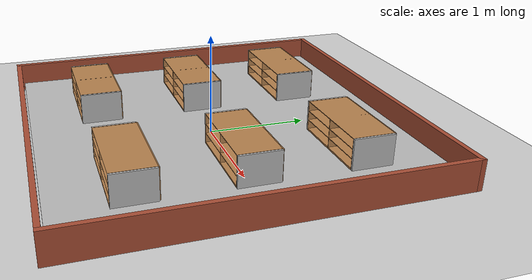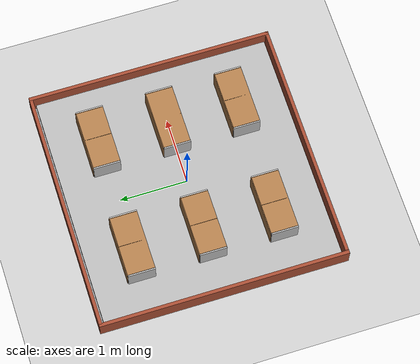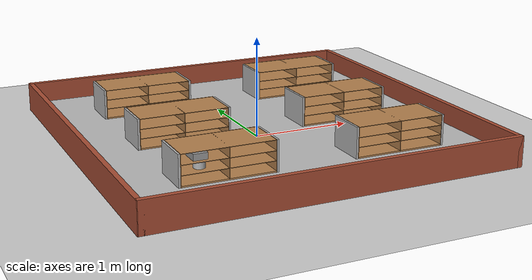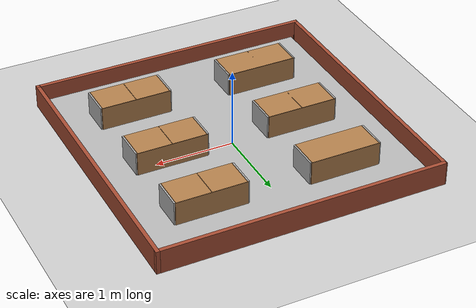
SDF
<sdf version="1.6">
 <world name="default">
  <light name="sun" type="directional">
   <pose>0 0 10 0 -0 0</pose>
   <diffuse>0.8 0.8 0.8 1</diffuse>
   <specular>0.2 0.2 0.2 1</specular>
   <attenuation>
    <range>1000</range>
    <constant>0.9</constant>
    <linear>0.01</linear>
    <quadratic>0.001</quadratic>
   </attenuation>
   <direction>-0.5 0.1 -0.9</direction>
  </light>
  <gravity>0 0 -9.8</gravity>
  <magnetic_field>6e-06 2.3e-05 -4.2e-05</magnetic_field>
  <atmosphere type="adiabatic"/>
  <physics name="default_physics" default="0" type="ode">
   <max_step_size>0.001</max_step_size>
   <real_time_factor>1</real_time_factor>
   <real_time_update_rate>1000</real_time_update_rate>
  </physics>
  <scene><ambient>0.4 0.4 0.4 1</ambient><background>0.7 0.7 0.7 1</background><shadows>1</shadows></scene>
  <spherical_coordinates>
   <surface_model>EARTH_WGS84</surface_model>
   <latitude_deg>0</latitude_deg>
   <longitude_deg>0</longitude_deg>
   <elevation>0</elevation>
   <heading_deg>0</heading_deg>
  </spherical_coordinates>
  <model name="ground_plane">
   <static>1</static>
   <link name="link">
    <collision name="collision">
     <geometry><plane><normal>0 0 1</normal><size>100 100</size></plane></geometry>
     <surface>
      <contact><collide_bitmask>65535</collide_bitmask></contact>
      <friction><ode><mu>100</mu><mu2>50</mu2></ode></friction>
     </surface>
    </collision>
    <visual name="visual">
     <cast_shadows>0</cast_shadows>
     <geometry><plane><normal>0 0 1</normal><size>100 100</size></plane></geometry>
     <material>
      <script><uri>file://media/materials/scripts/gazebo.material</uri><name>Gazebo/Grey</name></script>
     </material>
    </visual>
   </link>
   <pose>0.012778 0.030832 0 0 -0 0</pose>
  </model>
  <model name="arm_map">
   <pose>0.012944 0.005304 0.05 0 -0 0</pose>
   <link name="box">
    <collision name="collision"><geometry><box><size>3.5 3.5 0.1</size></box></geometry></collision>
    <visual name="visual">
     <geometry><box><size>3.5 3.5 0.1</size></box></geometry>
     <material>
      <script>
       <uri>model://arm_map/materials/scripts</uri>
       <uri>model://arm_map/materials/textures</uri>
       <name>arm_map</name>
      </script>
     </material>
    </visual>
    <inertial>
     <inertia><ixx>1</ixx><ixy>0</ixy><ixz>0</ixz><iyy>1</iyy><iyz>0</iyz><izz>1</izz></inertia>
     <mass>1</mass>
    </inertial>
   </link>
   <static>1</static>
  </model>
  <model name="Untitled">
   <pose>-0.01256 0.014 0 0 -0 0</pose>
   <link name="Wall_10">
    <collision name="Wall_10_Collision">
     <geometry><box><size>3.65 0.05 0.3</size></box></geometry>
     <pose>0 0 0.15 0 -0 0</pose>
    </collision>
    <visual name="Wall_10_Visual">
     <pose>0 0 0.15 0 -0 0</pose>
     <geometry><box><size>3.65 0.05 0.3</size></box></geometry>
     <material>
      <script><uri>file://media/materials/scripts/gazebo.material</uri><name>Gazebo/Bricks</name></script>
      <ambient>1 1 1 1</ambient>
     </material>
     <meta><layer>0</layer></meta>
    </visual>
    <pose>1.80356 0 0 0 -0 1.5708</pose>
   </link>
   <link name="Wall_11">
    <collision name="Wall_11_Collision">
     <geometry><box><size>3.64556 0.05 0.3</size></box></geometry>
     <pose>0 0 0.15 0 -0 0</pose>
    </collision>
    <visual name="Wall_11_Visual">
     <pose>0 0 0.15 0 -0 0</pose>
     <geometry><box><size>3.64556 0.05 0.3</size></box></geometry>
     <material>
      <script><uri>file://media/materials/scripts/gazebo.material</uri><name>Gazebo/Bricks</name></script>
      <ambient>1 1 1 1</ambient>
     </material>
     <meta><layer>0</layer></meta>
    </visual>
    <pose>0.005783 1.8 0 0 -0 3.14159</pose>
   </link>
   <link name="Wall_12">
    <collision name="Wall_12_Collision">
     <geometry><box><size>3.65 0.05 0.3</size></box></geometry>
     <pose>0 0 0.15 0 -0 0</pose>
    </collision>
    <visual name="Wall_12_Visual">
     <pose>0 0 0.15 0 -0 0</pose>
     <geometry><box><size>3.65 0.05 0.3</size></box></geometry>
     <material>
      <script><uri>file://media/materials/scripts/gazebo.material</uri><name>Gazebo/Bricks</name></script>
      <ambient>1 1 1 1</ambient>
     </material>
     <meta><layer>0</layer></meta>
    </visual>
    <pose>-1.80356 0 0 0 0 -1.5708</pose>
   </link>
   <link name="Wall_13">
    <collision name="Wall_13_Collision">
     <geometry><box><size>0.054437 0.05 0.3</size></box></geometry>
     <pose>0 0 0.15 0 -0 0</pose>
    </collision>
    <visual name="Wall_13_Visual">
     <pose>0 0 0.15 0 -0 0</pose>
     <geometry><box><size>0.054437 0.05 0.3</size></box></geometry>
     <material>
      <script><uri>file://media/materials/scripts/gazebo.material</uri><name>Gazebo/Bricks</name></script>
      <ambient>1 1 1 1</ambient>
     </material>
     <meta><layer>0</layer></meta>
    </visual>
    <pose>-1.79422 -1.8 0 0 -0 3.14159</pose>
   </link>
   <link name="Wall_6">
    <collision name="Wall_6_Collision">
     <geometry><box><size>3.65 0.05 0.3</size></box></geometry>
     <pose>0 0 0.15 0 -0 0</pose>
    </collision>
    <visual name="Wall_6_Visual">
     <pose>0 0 0.15 0 -0 0</pose>
     <geometry><box><size>3.65 0.05 0.3</size></box></geometry>
     <material>
      <script><uri>file://media/materials/scripts/gazebo.material</uri><name>Gazebo/Bricks</name></script>
      <ambient>1 1 1 1</ambient>
     </material>
     <meta><layer>0</layer></meta>
    </visual>
    <pose>0.003564 -1.8 0 0 -0 0</pose>
   </link>
   <static>1</static>
  </model>
  <model name="bookshelf_i">
   <static>1</static>
   <link name="link">
    <inertial><mass>1</mass></inertial>
    <collision name="back">
     <pose>0 0.01 0.15 0 -0 0</pose>
     <geometry><box><size>0.9 0.01 0.3</size></box></geometry>
    </collision>
    <visual name="visual1">
     <pose>0 0.01 0.15 0 -0 0</pose>
     <geometry><box><size>0.9 0.01 0.3</size></box></geometry>
     <material>
      <script><uri>file://media/materials/scripts/gazebo.material</uri><name>Gazebo/Wood</name></script>
     </material>
    </visual>
    <collision name="left_side">
     <pose>0.455 -0.195 0.15 0 -0 0</pose>
     <geometry><box><size>0.02 0.4 0.3</size></box></geometry>
    </collision>
    <visual name="visual2">
     <pose>0.455 -0.195 0.15 0 -0 0</pose>
     <geometry><box><size>0.02 0.4 0.3</size></box></geometry>
     <material>
      <script>
       <uri>model://bookshelf_i/materials11/scripts</uri>
       <uri>model://bookshelf_i/materials11/textures</uri>
       <name>BookShelf/11</name>
      </script>
     </material>
    </visual>
    <collision name="left_side_inner">
     <pose>0.4425 -0.195 0.15 0 -0 0</pose>
     <geometry><box><size>0.005 0.4 0.3</size></box></geometry>
    </collision>
    <visual name="visual2_inner">
     <pose>0.4425 -0.195 0.15 0 -0 0</pose>
     <geometry><box><size>0.005 0.4 0.3</size></box></geometry>
     <material>
      <script><uri>file://media/materials/scripts/gazebo.material</uri><name>Gazebo/Wood</name></script>
     </material>
    </visual>
    <collision name="right_side">
     <pose>-0.455 -0.195 0.15 0 -0 0</pose>
     <geometry><box><size>0.02 0.4 0.3</size></box></geometry>
    </collision>
    <visual name="visual3">
     <pose>-0.455 -0.195 0.15 0 -0 0</pose>
     <geometry><box><size>0.02 0.4 0.3</size></box></geometry>
     <material>
      <script>
       <uri>model://bookshelf_i/materials11/scripts</uri>
       <uri>model://bookshelf_i/materials11/textures</uri>
       <name>BookShelf/11</name>
      </script>
     </material>
    </visual>
    <collision name="right_side_inner">
     <pose>-0.4425 -0.195 0.15 0 -0 0</pose>
     <geometry><box><size>0.005 0.4 0.3</size></box></geometry>
    </collision>
    <visual name="visual3_inner">
     <pose>-0.4425 -0.195 0.15 0 -0 0</pose>
     <geometry><box><size>0.005 0.4 0.3</size></box></geometry>
     <material>
      <script><uri>file://media/materials/scripts/gazebo.material</uri><name>Gazebo/Wood</name></script>
     </material>
    </visual>
    <collision name="right_side_center">
     <pose>-0 -0.195 0.15 0 -0 0</pose>
     <geometry><box><size>0.005 0.4 0.3</size></box></geometry>
    </collision>
    <visual name="visual3_center">
     <pose>-0 -0.195 0.15 0 -0 0</pose>
     <geometry><box><size>0.005 0.4 0.3</size></box></geometry>
     <material>
      <script><uri>file://media/materials/scripts/gazebo.material</uri><name>Gazebo/Wood</name></script>
     </material>
    </visual>
    <collision name="bottom">
     <pose>0 -0.195 0.0075 0 -0 0</pose>
     <geometry><box><size>0.88 0.4 0.015</size></box></geometry>
    </collision>
    <visual name="visual4">
     <pose>0 -0.195 0.0075 0 -0 0</pose>
     <geometry><box><size>0.88 0.4 0.015</size></box></geometry>
     <material>
      <script><uri>file://media/materials/scripts/gazebo.material</uri><name>Gazebo/Wood</name></script>
     </material>
    </visual>
    <collision name="top">
     <pose>0 -0.195 0.2975 0 -0 0</pose>
     <geometry><box><size>0.88 0.4 0.005</size></box></geometry>
    </collision>
    <visual name="visual5">
     <pose>0 -0.195 0.2975 0 -0 0</pose>
     <geometry><box><size>0.88 0.4 0.005</size></box></geometry>
     <material>
      <script><uri>file://media/materials/scripts/gazebo.material</uri><name>Gazebo/Wood</name></script>
     </material>
    </visual>
    <collision name="low_shelf">
     <pose>0 -0.195 0.1075 0 -0 0</pose>
     <geometry><box><size>0.88 0.4 0.005</size></box></geometry>
    </collision>
    <visual name="visual6">
     <pose>0 -0.195 0.1075 0 -0 0</pose>
     <geometry><box><size>0.88 0.4 0.005</size></box></geometry>
     <material>
      <script><uri>file://media/materials/scripts/gazebo.material</uri><name>Gazebo/Wood</name></script>
     </material>
    </visual>
    <collision name="high_shelf">
     <pose>0 -0.195 0.2 0 -0 0</pose>
     <geometry><box><size>0.88 0.4 0.005</size></box></geometry>
    </collision>
    <visual name="visual7">
     <pose>0 -0.195 0.2 0 -0 0</pose>
     <geometry><box><size>0.88 0.4 0.005</size></box></geometry>
     <material>
      <script><uri>file://media/materials/scripts/gazebo.material</uri><name>Gazebo/Wood</name></script>
     </material>
    </visual>
   </link>
   <pose>0.876907 1.25603 0.1 0 -0 0</pose>
  </model>
  <model name="bookshelf_i_0">
   <static>1</static>
   <link name="link">
    <inertial><mass>1</mass></inertial>
    <collision name="back">
     <pose>0 0.01 0.15 0 -0 0</pose>
     <geometry><box><size>0.9 0.01 0.3</size></box></geometry>
    </collision>
    <visual name="visual1">
     <pose>0 0.01 0.15 0 -0 0</pose>
     <geometry><box><size>0.9 0.01 0.3</size></box></geometry>
     <material>
      <script><uri>file://media/materials/scripts/gazebo.material</uri><name>Gazebo/Wood</name></script>
     </material>
    </visual>
    <collision name="left_side">
     <pose>0.455 -0.195 0.15 0 -0 0</pose>
     <geometry><box><size>0.02 0.4 0.3</size></box></geometry>
    </collision>
    <visual name="visual2">
     <pose>0.455 -0.195 0.15 0 -0 0</pose>
     <geometry><box><size>0.02 0.4 0.3</size></box></geometry>
     <material>
      <script>
       <uri>model://bookshelf_i/materials12/scripts</uri>
       <uri>model://bookshelf_i/materials12/textures</uri>
       <name>BookShelf/12</name>
      </script>
     </material>
    </visual>
    <collision name="left_side_inner">
     <pose>0.4425 -0.195 0.15 0 -0 0</pose>
     <geometry><box><size>0.005 0.4 0.3</size></box></geometry>
    </collision>
    <visual name="visual2_inner">
     <pose>0.4425 -0.195 0.15 0 -0 0</pose>
     <geometry><box><size>0.005 0.4 0.3</size></box></geometry>
     <material>
      <script><uri>file://media/materials/scripts/gazebo.material</uri><name>Gazebo/Wood</name></script>
     </material>
    </visual>
    <collision name="right_side">
     <pose>-0.455 -0.195 0.15 0 -0 0</pose>
     <geometry><box><size>0.02 0.4 0.3</size></box></geometry>
    </collision>
    <visual name="visual3">
     <pose>-0.455 -0.195 0.15 0 -0 0</pose>
     <geometry><box><size>0.02 0.4 0.3</size></box></geometry>
     <material>
      <script>
       <uri>model://bookshelf_i/materials12/scripts</uri>
       <uri>model://bookshelf_i/materials12/textures</uri>
       <name>BookShelf/12</name>
      </script>
     </material>
    </visual>
    <collision name="right_side_inner">
     <pose>-0.4425 -0.195 0.15 0 -0 0</pose>
     <geometry><box><size>0.005 0.4 0.3</size></box></geometry>
    </collision>
    <visual name="visual3_inner">
     <pose>-0.4425 -0.195 0.15 0 -0 0</pose>
     <geometry><box><size>0.005 0.4 0.3</size></box></geometry>
     <material>
      <script><uri>file://media/materials/scripts/gazebo.material</uri><name>Gazebo/Wood</name></script>
     </material>
    </visual>
    <collision name="right_side_center">
     <pose>-0 -0.195 0.15 0 -0 0</pose>
     <geometry><box><size>0.005 0.4 0.3</size></box></geometry>
    </collision>
    <visual name="visual3_center">
     <pose>-0 -0.195 0.15 0 -0 0</pose>
     <geometry><box><size>0.005 0.4 0.3</size></box></geometry>
     <material>
      <script><uri>file://media/materials/scripts/gazebo.material</uri><name>Gazebo/Wood</name></script>
     </material>
    </visual>
    <collision name="bottom">
     <pose>0 -0.195 0.0075 0 -0 0</pose>
     <geometry><box><size>0.88 0.4 0.015</size></box></geometry>
    </collision>
    <visual name="visual4">
     <pose>0 -0.195 0.0075 0 -0 0</pose>
     <geometry><box><size>0.88 0.4 0.015</size></box></geometry>
     <material>
      <script><uri>file://media/materials/scripts/gazebo.material</uri><name>Gazebo/Wood</name></script>
     </material>
    </visual>
    <collision name="top">
     <pose>0 -0.195 0.2975 0 -0 0</pose>
     <geometry><box><size>0.88 0.4 0.005</size></box></geometry>
    </collision>
    <visual name="visual5">
     <pose>0 -0.195 0.2975 0 -0 0</pose>
     <geometry><box><size>0.88 0.4 0.005</size></box></geometry>
     <material>
      <script><uri>file://media/materials/scripts/gazebo.material</uri><name>Gazebo/Wood</name></script>
     </material>
    </visual>
    <collision name="low_shelf">
     <pose>0 -0.195 0.1075 0 -0 0</pose>
     <geometry><box><size>0.88 0.4 0.005</size></box></geometry>
    </collision>
    <visual name="visual6">
     <pose>0 -0.195 0.1075 0 -0 0</pose>
     <geometry><box><size>0.88 0.4 0.005</size></box></geometry>
     <material>
      <script><uri>file://media/materials/scripts/gazebo.material</uri><name>Gazebo/Wood</name></script>
     </material>
    </visual>
    <collision name="high_shelf">
     <pose>0 -0.195 0.2 0 -0 0</pose>
     <geometry><box><size>0.88 0.4 0.005</size></box></geometry>
    </collision>
    <visual name="visual7">
     <pose>0 -0.195 0.2 0 -0 0</pose>
     <geometry><box><size>0.88 0.4 0.005</size></box></geometry>
     <material>
      <script><uri>file://media/materials/scripts/gazebo.material</uri><name>Gazebo/Wood</name></script>
     </material>
    </visual>
   </link>
   <pose>0.878258 0.208949 0.1 0 -0 0</pose>
  </model>
  <model name="bookshelf_i_1">
   <static>1</static>
   <link name="link">
    <inertial><mass>1</mass></inertial>
    <collision name="back">
     <pose>0 0.01 0.15 0 -0 0</pose>
     <geometry><box><size>0.9 0.01 0.3</size></box></geometry>
    </collision>
    <visual name="visual1">
     <pose>0 0.01 0.15 0 -0 0</pose>
     <geometry><box><size>0.9 0.01 0.3</size></box></geometry>
     <material>
      <script><uri>file://media/materials/scripts/gazebo.material</uri><name>Gazebo/Wood</name></script>
     </material>
    </visual>
    <collision name="left_side">
     <pose>0.455 -0.195 0.15 0 -0 0</pose>
     <geometry><box><size>0.02 0.4 0.3</size></box></geometry>
    </collision>
    <visual name="visual2">
     <pose>0.455 -0.195 0.15 0 -0 0</pose>
     <geometry><box><size>0.02 0.4 0.3</size></box></geometry>
     <material>
      <script>
       <uri>model://bookshelf_i/materials13/scripts</uri>
       <uri>model://bookshelf_i/materials13/textures</uri>
       <name>BookShelf/13</name>
      </script>
     </material>
    </visual>
    <collision name="left_side_inner">
     <pose>0.4425 -0.195 0.15 0 -0 0</pose>
     <geometry><box><size>0.005 0.4 0.3</size></box></geometry>
    </collision>
    <visual name="visual2_inner">
     <pose>0.4425 -0.195 0.15 0 -0 0</pose>
     <geometry><box><size>0.005 0.4 0.3</size></box></geometry>
     <material>
      <script><uri>file://media/materials/scripts/gazebo.material</uri><name>Gazebo/Wood</name></script>
     </material>
    </visual>
    <collision name="right_side">
     <pose>-0.455 -0.195 0.15 0 -0 0</pose>
     <geometry><box><size>0.02 0.4 0.3</size></box></geometry>
    </collision>
    <visual name="visual3">
     <pose>-0.455 -0.195 0.15 0 -0 0</pose>
     <geometry><box><size>0.02 0.4 0.3</size></box></geometry>
     <material>
      <script>
       <uri>model://bookshelf_i/materials13/scripts</uri>
       <uri>model://bookshelf_i/materials13/textures</uri>
       <name>BookShelf/13</name>
      </script>
     </material>
    </visual>
    <collision name="right_side_inner">
     <pose>-0.4425 -0.195 0.15 0 -0 0</pose>
     <geometry><box><size>0.005 0.4 0.3</size></box></geometry>
    </collision>
    <visual name="visual3_inner">
     <pose>-0.4425 -0.195 0.15 0 -0 0</pose>
     <geometry><box><size>0.005 0.4 0.3</size></box></geometry>
     <material>
      <script><uri>file://media/materials/scripts/gazebo.material</uri><name>Gazebo/Wood</name></script>
     </material>
    </visual>
    <collision name="right_side_center">
     <pose>-0 -0.195 0.15 0 -0 0</pose>
     <geometry><box><size>0.005 0.4 0.3</size></box></geometry>
    </collision>
    <visual name="visual3_center">
     <pose>-0 -0.195 0.15 0 -0 0</pose>
     <geometry><box><size>0.005 0.4 0.3</size></box></geometry>
     <material>
      <script><uri>file://media/materials/scripts/gazebo.material</uri><name>Gazebo/Wood</name></script>
     </material>
    </visual>
    <collision name="bottom">
     <pose>0 -0.195 0.0075 0 -0 0</pose>
     <geometry><box><size>0.88 0.4 0.015</size></box></geometry>
    </collision>
    <visual name="visual4">
     <pose>0 -0.195 0.0075 0 -0 0</pose>
     <geometry><box><size>0.88 0.4 0.015</size></box></geometry>
     <material>
      <script><uri>file://media/materials/scripts/gazebo.material</uri><name>Gazebo/Wood</name></script>
     </material>
    </visual>
    <collision name="top">
     <pose>0 -0.195 0.2975 0 -0 0</pose>
     <geometry><box><size>0.88 0.4 0.005</size></box></geometry>
    </collision>
    <visual name="visual5">
     <pose>0 -0.195 0.2975 0 -0 0</pose>
     <geometry><box><size>0.88 0.4 0.005</size></box></geometry>
     <material>
      <script><uri>file://media/materials/scripts/gazebo.material</uri><name>Gazebo/Wood</name></script>
     </material>
    </visual>
    <collision name="low_shelf">
     <pose>0 -0.195 0.1075 0 -0 0</pose>
     <geometry><box><size>0.88 0.4 0.005</size></box></geometry>
    </collision>
    <visual name="visual6">
     <pose>0 -0.195 0.1075 0 -0 0</pose>
     <geometry><box><size>0.88 0.4 0.005</size></box></geometry>
     <material>
      <script><uri>file://media/materials/scripts/gazebo.material</uri><name>Gazebo/Wood</name></script>
     </material>
    </visual>
    <collision name="high_shelf">
     <pose>0 -0.195 0.2 0 -0 0</pose>
     <geometry><box><size>0.88 0.4 0.005</size></box></geometry>
    </collision>
    <visual name="visual7">
     <pose>0 -0.195 0.2 0 -0 0</pose>
     <geometry><box><size>0.88 0.4 0.005</size></box></geometry>
     <material>
      <script><uri>file://media/materials/scripts/gazebo.material</uri><name>Gazebo/Wood</name></script>
     </material>
    </visual>
   </link>
   <pose>0.881529 -0.836875 0.1 0 -0 0</pose>
  </model>
  <model name="bookshelf_i_2">
   <static>1</static>
   <link name="link">
    <inertial><mass>1</mass></inertial>
    <collision name="back">
     <pose>0 0.01 0.15 0 -0 0</pose>
     <geometry><box><size>0.9 0.01 0.3</size></box></geometry>
    </collision>
    <visual name="visual1">
     <pose>0 0.01 0.15 0 -0 0</pose>
     <geometry><box><size>0.9 0.01 0.3</size></box></geometry>
     <material>
      <script><uri>file://media/materials/scripts/gazebo.material</uri><name>Gazebo/Wood</name></script>
     </material>
    </visual>
    <collision name="left_side">
     <pose>0.455 -0.195 0.15 0 -0 0</pose>
     <geometry><box><size>0.02 0.4 0.3</size></box></geometry>
    </collision>
    <visual name="visual2">
     <pose>0.455 -0.195 0.15 0 -0 0</pose>
     <geometry><box><size>0.02 0.4 0.3</size></box></geometry>
     <material>
      <script>
       <uri>model://bookshelf_i/materials21/scripts</uri>
       <uri>model://bookshelf_i/materials21/textures</uri>
       <name>BookShelf/21</name>
      </script>
     </material>
    </visual>
    <collision name="left_side_inner">
     <pose>0.4425 -0.195 0.15 0 -0 0</pose>
     <geometry><box><size>0.005 0.4 0.3</size></box></geometry>
    </collision>
    <visual name="visual2_inner">
     <pose>0.4425 -0.195 0.15 0 -0 0</pose>
     <geometry><box><size>0.005 0.4 0.3</size></box></geometry>
     <material>
      <script><uri>file://media/materials/scripts/gazebo.material</uri><name>Gazebo/Wood</name></script>
     </material>
    </visual>
    <collision name="right_side">
     <pose>-0.455 -0.195 0.15 0 -0 0</pose>
     <geometry><box><size>0.02 0.4 0.3</size></box></geometry>
    </collision>
    <visual name="visual3">
     <pose>-0.455 -0.195 0.15 0 -0 0</pose>
     <geometry><box><size>0.02 0.4 0.3</size></box></geometry>
     <material>
      <script>
       <uri>model://bookshelf_i/materials21/scripts</uri>
       <uri>model://bookshelf_i/materials21/textures</uri>
       <name>BookShelf/21</name>
      </script>
     </material>
    </visual>
    <collision name="right_side_inner">
     <pose>-0.4425 -0.195 0.15 0 -0 0</pose>
     <geometry><box><size>0.005 0.4 0.3</size></box></geometry>
    </collision>
    <visual name="visual3_inner">
     <pose>-0.4425 -0.195 0.15 0 -0 0</pose>
     <geometry><box><size>0.005 0.4 0.3</size></box></geometry>
     <material>
      <script><uri>file://media/materials/scripts/gazebo.material</uri><name>Gazebo/Wood</name></script>
     </material>
    </visual>
    <collision name="right_side_center">
     <pose>-0 -0.195 0.15 0 -0 0</pose>
     <geometry><box><size>0.005 0.4 0.3</size></box></geometry>
    </collision>
    <visual name="visual3_center">
     <pose>-0 -0.195 0.15 0 -0 0</pose>
     <geometry><box><size>0.005 0.4 0.3</size></box></geometry>
     <material>
      <script><uri>file://media/materials/scripts/gazebo.material</uri><name>Gazebo/Wood</name></script>
     </material>
    </visual>
    <collision name="bottom">
     <pose>0 -0.195 0.0075 0 -0 0</pose>
     <geometry><box><size>0.88 0.4 0.015</size></box></geometry>
    </collision>
    <visual name="visual4">
     <pose>0 -0.195 0.0075 0 -0 0</pose>
     <geometry><box><size>0.88 0.4 0.015</size></box></geometry>
     <material>
      <script><uri>file://media/materials/scripts/gazebo.material</uri><name>Gazebo/Wood</name></script>
     </material>
    </visual>
    <collision name="top">
     <pose>0 -0.195 0.2975 0 -0 0</pose>
     <geometry><box><size>0.88 0.4 0.005</size></box></geometry>
    </collision>
    <visual name="visual5">
     <pose>0 -0.195 0.2975 0 -0 0</pose>
     <geometry><box><size>0.88 0.4 0.005</size></box></geometry>
     <material>
      <script><uri>file://media/materials/scripts/gazebo.material</uri><name>Gazebo/Wood</name></script>
     </material>
    </visual>
    <collision name="low_shelf">
     <pose>0 -0.195 0.1075 0 -0 0</pose>
     <geometry><box><size>0.88 0.4 0.005</size></box></geometry>
    </collision>
    <visual name="visual6">
     <pose>0 -0.195 0.1075 0 -0 0</pose>
     <geometry><box><size>0.88 0.4 0.005</size></box></geometry>
     <material>
      <script><uri>file://media/materials/scripts/gazebo.material</uri><name>Gazebo/Wood</name></script>
     </material>
    </visual>
    <collision name="high_shelf">
     <pose>0 -0.195 0.2 0 -0 0</pose>
     <geometry><box><size>0.88 0.4 0.005</size></box></geometry>
    </collision>
    <visual name="visual7">
     <pose>0 -0.195 0.2 0 -0 0</pose>
     <geometry><box><size>0.88 0.4 0.005</size></box></geometry>
     <material>
      <script><uri>file://media/materials/scripts/gazebo.material</uri><name>Gazebo/Wood</name></script>
     </material>
    </visual>
   </link>
   <pose>-0.824938 1.25613 0.1 0 -0 0</pose>
  </model>
  <model name="bookshelf_i_3">
   <static>1</static>
   <link name="link">
    <inertial><mass>1</mass></inertial>
    <collision name="back">
     <pose>0 0.01 0.15 0 -0 0</pose>
     <geometry><box><size>0.9 0.01 0.3</size></box></geometry>
    </collision>
    <visual name="visual1">
     <pose>0 0.01 0.15 0 -0 0</pose>
     <geometry><box><size>0.9 0.01 0.3</size></box></geometry>
     <material>
      <script><uri>file://media/materials/scripts/gazebo.material</uri><name>Gazebo/Wood</name></script>
     </material>
    </visual>
    <collision name="left_side">
     <pose>0.455 -0.195 0.15 0 -0 0</pose>
     <geometry><box><size>0.02 0.4 0.3</size></box></geometry>
    </collision>
    <visual name="visual2">
     <pose>0.455 -0.195 0.15 0 -0 0</pose>
     <geometry><box><size>0.02 0.4 0.3</size></box></geometry>
     <material>
      <script>
       <uri>model://bookshelf_i/materials22/scripts</uri>
       <uri>model://bookshelf_i/materials22/textures</uri>
       <name>BookShelf/22</name>
      </script>
     </material>
    </visual>
    <collision name="left_side_inner">
     <pose>0.4425 -0.195 0.15 0 -0 0</pose>
     <geometry><box><size>0.005 0.4 0.3</size></box></geometry>
    </collision>
    <visual name="visual2_inner">
     <pose>0.4425 -0.195 0.15 0 -0 0</pose>
     <geometry><box><size>0.005 0.4 0.3</size></box></geometry>
     <material>
      <script><uri>file://media/materials/scripts/gazebo.material</uri><name>Gazebo/Wood</name></script>
     </material>
    </visual>
    <collision name="right_side">
     <pose>-0.455 -0.195 0.15 0 -0 0</pose>
     <geometry><box><size>0.02 0.4 0.3</size></box></geometry>
    </collision>
    <visual name="visual3">
     <pose>-0.455 -0.195 0.15 0 -0 0</pose>
     <geometry><box><size>0.02 0.4 0.3</size></box></geometry>
     <material>
      <script>
       <uri>model://bookshelf_i/materials22/scripts</uri>
       <uri>model://bookshelf_i/materials22/textures</uri>
       <name>BookShelf/22</name>
      </script>
     </material>
    </visual>
    <collision name="right_side_inner">
     <pose>-0.4425 -0.195 0.15 0 -0 0</pose>
     <geometry><box><size>0.005 0.4 0.3</size></box></geometry>
    </collision>
    <visual name="visual3_inner">
     <pose>-0.4425 -0.195 0.15 0 -0 0</pose>
     <geometry><box><size>0.005 0.4 0.3</size></box></geometry>
     <material>
      <script><uri>file://media/materials/scripts/gazebo.material</uri><name>Gazebo/Wood</name></script>
     </material>
    </visual>
    <collision name="right_side_center">
     <pose>-0 -0.195 0.15 0 -0 0</pose>
     <geometry><box><size>0.005 0.4 0.3</size></box></geometry>
    </collision>
    <visual name="visual3_center">
     <pose>-0 -0.195 0.15 0 -0 0</pose>
     <geometry><box><size>0.005 0.4 0.3</size></box></geometry>
     <material>
      <script><uri>file://media/materials/scripts/gazebo.material</uri><name>Gazebo/Wood</name></script>
     </material>
    </visual>
    <collision name="bottom">
     <pose>0 -0.195 0.0075 0 -0 0</pose>
     <geometry><box><size>0.88 0.4 0.015</size></box></geometry>
    </collision>
    <visual name="visual4">
     <pose>0 -0.195 0.0075 0 -0 0</pose>
     <geometry><box><size>0.88 0.4 0.015</size></box></geometry>
     <material>
      <script><uri>file://media/materials/scripts/gazebo.material</uri><name>Gazebo/Wood</name></script>
     </material>
    </visual>
    <collision name="top">
     <pose>0 -0.195 0.2975 0 -0 0</pose>
     <geometry><box><size>0.88 0.4 0.005</size></box></geometry>
    </collision>
    <visual name="visual5">
     <pose>0 -0.195 0.2975 0 -0 0</pose>
     <geometry><box><size>0.88 0.4 0.005</size></box></geometry>
     <material>
      <script><uri>file://media/materials/scripts/gazebo.material</uri><name>Gazebo/Wood</name></script>
     </material>
    </visual>
    <collision name="low_shelf">
     <pose>0 -0.195 0.1075 0 -0 0</pose>
     <geometry><box><size>0.88 0.4 0.005</size></box></geometry>
    </collision>
    <visual name="visual6">
     <pose>0 -0.195 0.1075 0 -0 0</pose>
     <geometry><box><size>0.88 0.4 0.005</size></box></geometry>
     <material>
      <script><uri>file://media/materials/scripts/gazebo.material</uri><name>Gazebo/Wood</name></script>
     </material>
    </visual>
    <collision name="high_shelf">
     <pose>0 -0.195 0.2 0 -0 0</pose>
     <geometry><box><size>0.88 0.4 0.005</size></box></geometry>
    </collision>
    <visual name="visual7">
     <pose>0 -0.195 0.2 0 -0 0</pose>
     <geometry><box><size>0.88 0.4 0.005</size></box></geometry>
     <material>
      <script><uri>file://media/materials/scripts/gazebo.material</uri><name>Gazebo/Wood</name></script>
     </material>
    </visual>
   </link>
   <pose>-0.823403 0.210204 0.1 0 -0 0</pose>
  </model>
  <model name="bookshelf_i_4">
   <static>1</static>
   <link name="link">
    <inertial><mass>1</mass></inertial>
    <collision name="back">
     <pose>0 0.01 0.15 0 -0 0</pose>
     <geometry><box><size>0.9 0.01 0.3</size></box></geometry>
    </collision>
    <visual name="visual1">
     <pose>0 0.01 0.15 0 -0 0</pose>
     <geometry><box><size>0.9 0.01 0.3</size></box></geometry>
     <material>
      <script><uri>file://media/materials/scripts/gazebo.material</uri><name>Gazebo/Wood</name></script>
     </material>
    </visual>
    <collision name="left_side">
     <pose>0.455 -0.195 0.15 0 -0 0</pose>
     <geometry><box><size>0.02 0.4 0.3</size></box></geometry>
    </collision>
    <visual name="visual2">
     <pose>0.455 -0.195 0.15 0 -0 0</pose>
     <geometry><box><size>0.02 0.4 0.3</size></box></geometry>
     <material>
      <script>
       <uri>model://bookshelf_i/materials23/scripts</uri>
       <uri>model://bookshelf_i/materials23/textures</uri>
       <name>BookShelf/23</name>
      </script>
     </material>
    </visual>
    <collision name="left_side_inner">
     <pose>0.4425 -0.195 0.15 0 -0 0</pose>
     <geometry><box><size>0.005 0.4 0.3</size></box></geometry>
    </collision>
    <visual name="visual2_inner">
     <pose>0.4425 -0.195 0.15 0 -0 0</pose>
     <geometry><box><size>0.005 0.4 0.3</size></box></geometry>
     <material>
      <script><uri>file://media/materials/scripts/gazebo.material</uri><name>Gazebo/Wood</name></script>
     </material>
    </visual>
    <collision name="right_side">
     <pose>-0.455 -0.195 0.15 0 -0 0</pose>
     <geometry><box><size>0.02 0.4 0.3</size></box></geometry>
    </collision>
    <visual name="visual3">
     <pose>-0.455 -0.195 0.15 0 -0 0</pose>
     <geometry><box><size>0.02 0.4 0.3</size></box></geometry>
     <material>
      <script>
       <uri>model://bookshelf_i/materials23/scripts</uri>
       <uri>model://bookshelf_i/materials23/textures</uri>
       <name>BookShelf/23</name>
      </script>
     </material>
    </visual>
    <collision name="right_side_inner">
     <pose>-0.4425 -0.195 0.15 0 -0 0</pose>
     <geometry><box><size>0.005 0.4 0.3</size></box></geometry>
    </collision>
    <visual name="visual3_inner">
     <pose>-0.4425 -0.195 0.15 0 -0 0</pose>
     <geometry><box><size>0.005 0.4 0.3</size></box></geometry>
     <material>
      <script><uri>file://media/materials/scripts/gazebo.material</uri><name>Gazebo/Wood</name></script>
     </material>
    </visual>
    <collision name="right_side_center">
     <pose>-0 -0.195 0.15 0 -0 0</pose>
     <geometry><box><size>0.005 0.4 0.3</size></box></geometry>
    </collision>
    <visual name="visual3_center">
     <pose>-0 -0.195 0.15 0 -0 0</pose>
     <geometry><box><size>0.005 0.4 0.3</size></box></geometry>
     <material>
      <script><uri>file://media/materials/scripts/gazebo.material</uri><name>Gazebo/Wood</name></script>
     </material>
    </visual>
    <collision name="bottom">
     <pose>0 -0.195 0.0075 0 -0 0</pose>
     <geometry><box><size>0.88 0.4 0.015</size></box></geometry>
    </collision>
    <visual name="visual4">
     <pose>0 -0.195 0.0075 0 -0 0</pose>
     <geometry><box><size>0.88 0.4 0.015</size></box></geometry>
     <material>
      <script><uri>file://media/materials/scripts/gazebo.material</uri><name>Gazebo/Wood</name></script>
     </material>
    </visual>
    <collision name="top">
     <pose>0 -0.195 0.2975 0 -0 0</pose>
     <geometry><box><size>0.88 0.4 0.005</size></box></geometry>
    </collision>
    <visual name="visual5">
     <pose>0 -0.195 0.2975 0 -0 0</pose>
     <geometry><box><size>0.88 0.4 0.005</size></box></geometry>
     <material>
      <script><uri>file://media/materials/scripts/gazebo.material</uri><name>Gazebo/Wood</name></script>
     </material>
    </visual>
    <collision name="low_shelf">
     <pose>0 -0.195 0.1075 0 -0 0</pose>
     <geometry><box><size>0.88 0.4 0.005</size></box></geometry>
    </collision>
    <visual name="visual6">
     <pose>0 -0.195 0.1075 0 -0 0</pose>
     <geometry><box><size>0.88 0.4 0.005</size></box></geometry>
     <material>
      <script><uri>file://media/materials/scripts/gazebo.material</uri><name>Gazebo/Wood</name></script>
     </material>
    </visual>
    <collision name="high_shelf">
     <pose>0 -0.195 0.2 0 -0 0</pose>
     <geometry><box><size>0.88 0.4 0.005</size></box></geometry>
    </collision>
    <visual name="visual7">
     <pose>0 -0.195 0.2 0 -0 0</pose>
     <geometry><box><size>0.88 0.4 0.005</size></box></geometry>
     <material>
      <script><uri>file://media/materials/scripts/gazebo.material</uri><name>Gazebo/Wood</name></script>
     </material>
    </visual>
   </link>
   <pose>-0.823401 -0.84034 0.1 0 -0 0</pose>
  </model>
  <model name="beer_i">
   <link name="link">
    <pose>0 0 0.035 0 -0 0</pose>
    <inertial>
     <mass>0.39</mass>
     <inertia><ixx>0.00058</ixx><ixy>0</ixy><ixz>0</ixz><iyy>0.00058</iyy><iyz>0</iyz><izz>0.00019</izz></inertia>
    </inertial>
    <collision name="collision">
     <geometry><cylinder><radius>0.055</radius><length>0.07</length></cylinder></geometry>
    </collision>
    <visual name="visual">
     <geometry><cylinder><radius>0.055</radius><length>0.07</length></cylinder></geometry>
     <material>
      <script>
       <uri>model://beer_i/materials/scripts</uri>
       <uri>model://beer_i/materials/textures</uri>
       <name>Beer_i/Diffuse</name>
      </script>
     </material>
    </visual>
   </link>
   <pose>-1.05288 -1.11191 0.210002 3.7e-05 6e-06 1e-05</pose>
  </model>
  <model name="unit_box">
   <pose>-1.06983 -1.10252 0.333544 0 6e-06 2e-06</pose>
   <link name="link">
    <inertial>
     <mass>1</mass>
     <inertia>
      <ixx>0.166667</ixx>
      <ixy>0</ixy>
      <ixz>0</ixz>
      <iyy>0.166667</iyy>
      <iyz>0</iyz>
      <izz>0.166667</izz>
     </inertia>
    </inertial>
    <collision name="collision">
     <geometry><box><size>0.135555 0.18008 0.0620876</size></box></geometry>
    </collision>
    <visual name="visual">
     <geometry><box><size>0.135555 0.18008 0.0620876</size></box></geometry>
     <material>
      <script><name>Gazebo/Grey</name><uri>file://media/materials/scripts/gazebo.material</uri></script>
     </material>
    </visual>
   </link>
  </model>
 </world>
</sdf>
